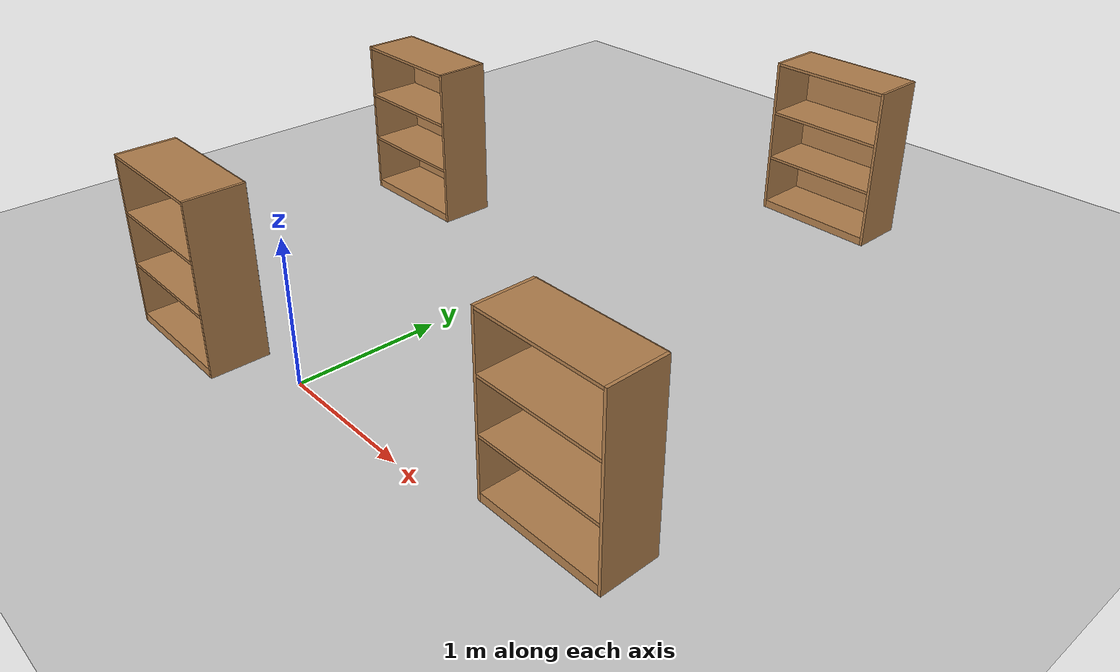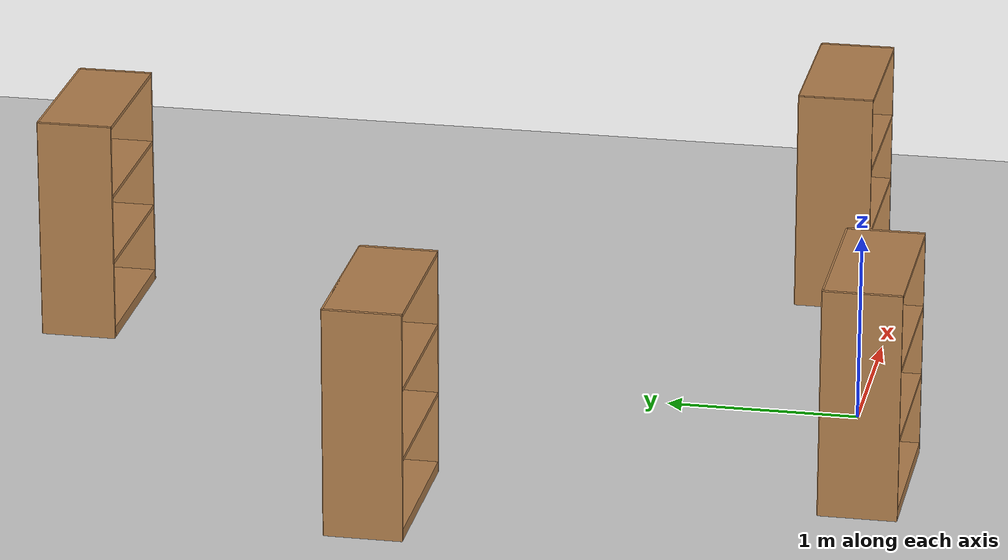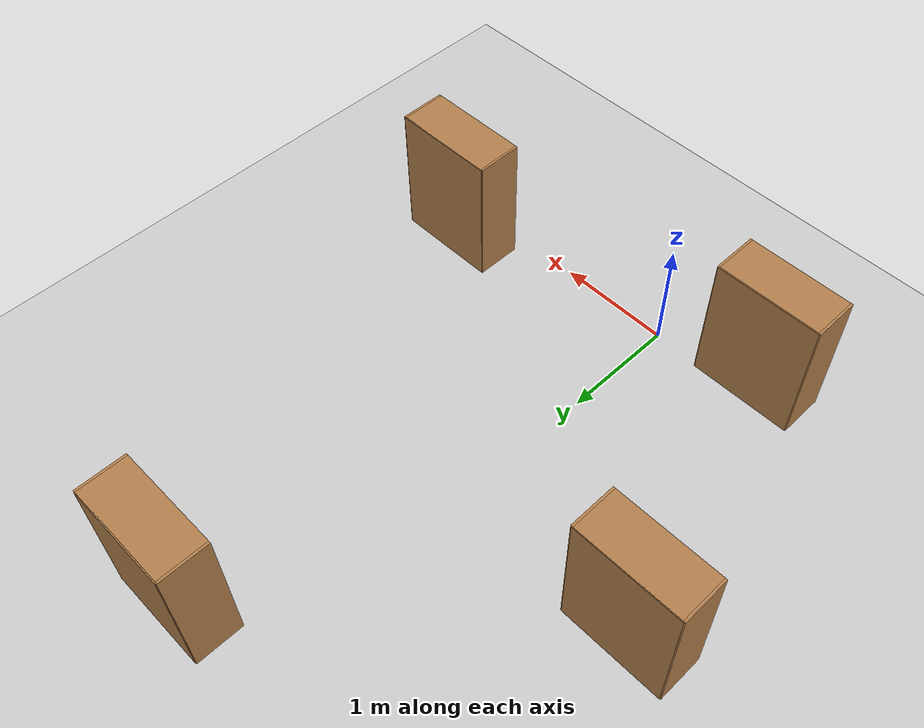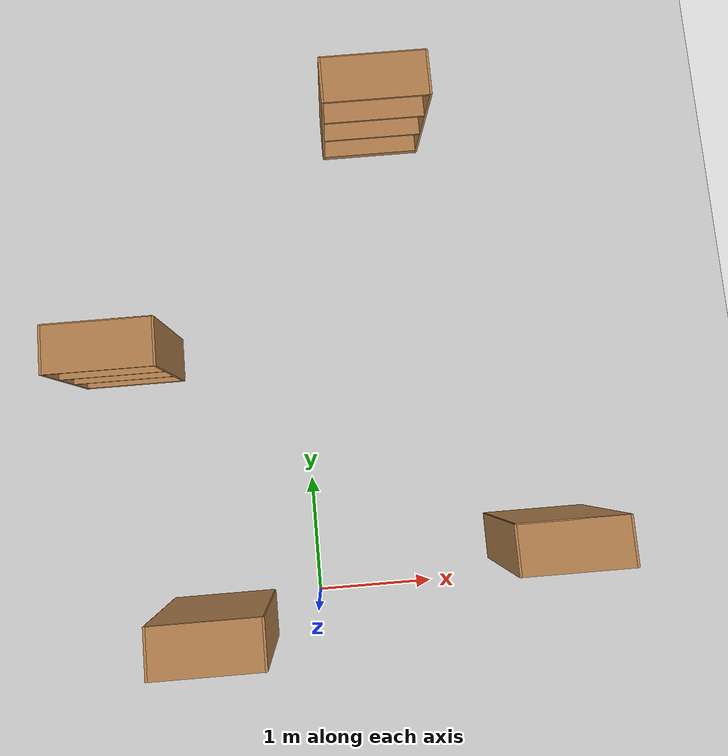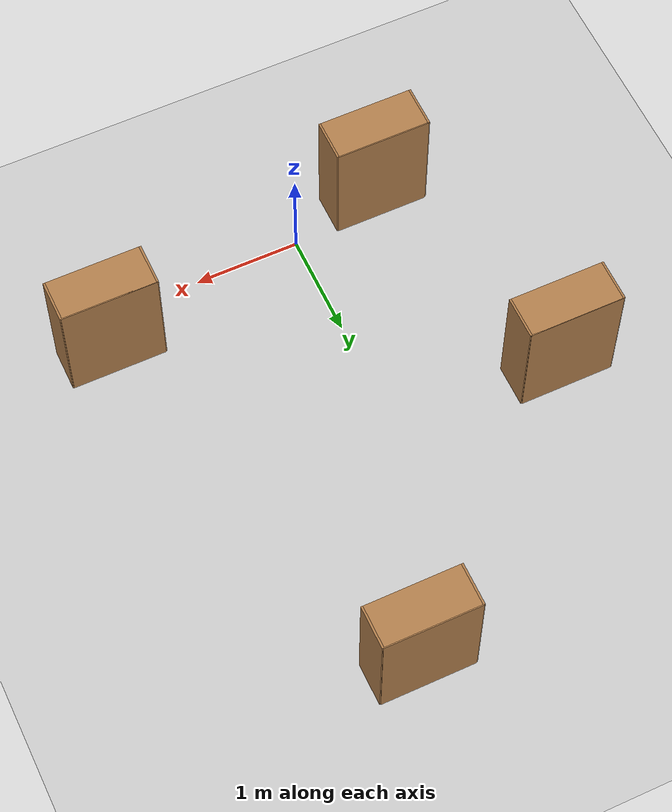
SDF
<sdf version="1.7">
 <world name="default">
  <model name="ground_plane">
   <static>1</static>
   <link name="link">
    <collision name="collision">
     <geometry><plane><normal>0 0 1</normal><size>100 100</size></plane></geometry>
     <surface>
      <contact><collide_bitmask>65535</collide_bitmask></contact>
      <friction><ode><mu>100</mu><mu2>50</mu2></ode></friction>
     </surface>
    </collision>
    <visual name="visual">
     <cast_shadows>0</cast_shadows>
     <geometry><plane><normal>0 0 1</normal><size>100 100</size></plane></geometry>
     <material>
      <script><uri>file://media/materials/scripts/gazebo.material</uri><name>Gazebo/Grey</name></script>
     </material>
    </visual>
    <enable_wind>1</enable_wind>
   </link>
   <enable_wind>1</enable_wind>
  </model>
  <model name="ground_plane_1">
   <static>1</static>
   <link name="link">
    <collision name="collision">
     <geometry><plane><normal>0 0 1</normal><size>100 100</size></plane></geometry>
     <surface>
      <contact><collide_bitmask>65535</collide_bitmask></contact>
      <friction><ode><mu>100</mu><mu2>50</mu2></ode></friction>
     </surface>
    </collision>
    <visual name="visual">
     <cast_shadows>0</cast_shadows>
     <geometry><plane><normal>0 0 1</normal><size>100 100</size></plane></geometry>
     <material>
      <script><uri>file://media/materials/scripts/gazebo.material</uri><name>Gazebo/Grey</name></script>
     </material>
    </visual>
   </link>
   <pose>-521.669 163.003 0 0 -0 0</pose>
  </model>
  <model name="bookshelf">
   <static>1</static>
   <link name="link">
    <inertial><mass>1</mass></inertial>
    <collision name="back">
     <pose>0 0.005 0.6 0 -0 0</pose>
     <geometry><box><size>0.9 0.01 1.2</size></box></geometry>
    </collision>
    <visual name="visual1">
     <pose>0 0.005 0.6 0 -0 0</pose>
     <geometry><box><size>0.9 0.01 1.2</size></box></geometry>
     <material>
      <script><uri>file://media/materials/scripts/gazebo.material</uri><name>Gazebo/Wood</name></script>
     </material>
    </visual>
    <collision name="left_side">
     <pose>0.45 -0.195 0.6 0 -0 0</pose>
     <geometry><box><size>0.02 0.4 1.2</size></box></geometry>
    </collision>
    <visual name="visual2">
     <pose>0.45 -0.195 0.6 0 -0 0</pose>
     <geometry><box><size>0.02 0.4 1.2</size></box></geometry>
     <material>
      <script><uri>file://media/materials/scripts/gazebo.material</uri><name>Gazebo/Wood</name></script>
     </material>
    </visual>
    <collision name="right_side">
     <pose>-0.45 -0.195 0.6 0 -0 0</pose>
     <geometry><box><size>0.02 0.4 1.2</size></box></geometry>
    </collision>
    <visual name="visual3">
     <pose>-0.45 -0.195 0.6 0 -0 0</pose>
     <geometry><box><size>0.02 0.4 1.2</size></box></geometry>
     <material>
      <script><uri>file://media/materials/scripts/gazebo.material</uri><name>Gazebo/Wood</name></script>
     </material>
    </visual>
    <collision name="bottom">
     <pose>0 -0.195 0.03 0 -0 0</pose>
     <geometry><box><size>0.88 0.4 0.06</size></box></geometry>
    </collision>
    <visual name="visual4">
     <pose>0 -0.195 0.03 0 -0 0</pose>
     <geometry><box><size>0.88 0.4 0.06</size></box></geometry>
     <material>
      <script><uri>file://media/materials/scripts/gazebo.material</uri><name>Gazebo/Wood</name></script>
     </material>
    </visual>
    <collision name="top">
     <pose>0 -0.195 1.19 0 -0 0</pose>
     <geometry><box><size>0.88 0.4 0.02</size></box></geometry>
    </collision>
    <visual name="visual5">
     <pose>0 -0.195 1.19 0 -0 0</pose>
     <geometry><box><size>0.88 0.4 0.02</size></box></geometry>
     <material>
      <script><uri>file://media/materials/scripts/gazebo.material</uri><name>Gazebo/Wood</name></script>
     </material>
    </visual>
    <collision name="low_shelf">
     <pose>0 -0.195 0.43 0 -0 0</pose>
     <geometry><box><size>0.88 0.4 0.02</size></box></geometry>
    </collision>
    <visual name="visual6">
     <pose>0 -0.195 0.43 0 -0 0</pose>
     <geometry><box><size>0.88 0.4 0.02</size></box></geometry>
     <material>
      <script><uri>file://media/materials/scripts/gazebo.material</uri><name>Gazebo/Wood</name></script>
     </material>
    </visual>
    <collision name="high_shelf">
     <pose>0 -0.195 0.8 0 -0 0</pose>
     <geometry><box><size>0.88 0.4 0.02</size></box></geometry>
    </collision>
    <visual name="visual7">
     <pose>0 -0.195 0.8 0 -0 0</pose>
     <geometry><box><size>0.88 0.4 0.02</size></box></geometry>
     <material>
      <script><uri>file://media/materials/scripts/gazebo.material</uri><name>Gazebo/Wood</name></script>
     </material>
    </visual>
   </link>
   <pose>0.806673 4.4542 0 0 -0 0</pose>
  </model>
  <model name="bookshelf_0">
   <static>1</static>
   <link name="link">
    <inertial><mass>1</mass></inertial>
    <collision name="back">
     <pose>0 0.005 0.6 0 -0 0</pose>
     <geometry><box><size>0.9 0.01 1.2</size></box></geometry>
    </collision>
    <visual name="visual1">
     <pose>0 0.005 0.6 0 -0 0</pose>
     <geometry><box><size>0.9 0.01 1.2</size></box></geometry>
     <material>
      <script><uri>file://media/materials/scripts/gazebo.material</uri><name>Gazebo/Wood</name></script>
     </material>
    </visual>
    <collision name="left_side">
     <pose>0.45 -0.195 0.6 0 -0 0</pose>
     <geometry><box><size>0.02 0.4 1.2</size></box></geometry>
    </collision>
    <visual name="visual2">
     <pose>0.45 -0.195 0.6 0 -0 0</pose>
     <geometry><box><size>0.02 0.4 1.2</size></box></geometry>
     <material>
      <script><uri>file://media/materials/scripts/gazebo.material</uri><name>Gazebo/Wood</name></script>
     </material>
    </visual>
    <collision name="right_side">
     <pose>-0.45 -0.195 0.6 0 -0 0</pose>
     <geometry><box><size>0.02 0.4 1.2</size></box></geometry>
    </collision>
    <visual name="visual3">
     <pose>-0.45 -0.195 0.6 0 -0 0</pose>
     <geometry><box><size>0.02 0.4 1.2</size></box></geometry>
     <material>
      <script><uri>file://media/materials/scripts/gazebo.material</uri><name>Gazebo/Wood</name></script>
     </material>
    </visual>
    <collision name="bottom">
     <pose>0 -0.195 0.03 0 -0 0</pose>
     <geometry><box><size>0.88 0.4 0.06</size></box></geometry>
    </collision>
    <visual name="visual4">
     <pose>0 -0.195 0.03 0 -0 0</pose>
     <geometry><box><size>0.88 0.4 0.06</size></box></geometry>
     <material>
      <script><uri>file://media/materials/scripts/gazebo.material</uri><name>Gazebo/Wood</name></script>
     </material>
    </visual>
    <collision name="top">
     <pose>0 -0.195 1.19 0 -0 0</pose>
     <geometry><box><size>0.88 0.4 0.02</size></box></geometry>
    </collision>
    <visual name="visual5">
     <pose>0 -0.195 1.19 0 -0 0</pose>
     <geometry><box><size>0.88 0.4 0.02</size></box></geometry>
     <material>
      <script><uri>file://media/materials/scripts/gazebo.material</uri><name>Gazebo/Wood</name></script>
     </material>
    </visual>
    <collision name="low_shelf">
     <pose>0 -0.195 0.43 0 -0 0</pose>
     <geometry><box><size>0.88 0.4 0.02</size></box></geometry>
    </collision>
    <visual name="visual6">
     <pose>0 -0.195 0.43 0 -0 0</pose>
     <geometry><box><size>0.88 0.4 0.02</size></box></geometry>
     <material>
      <script><uri>file://media/materials/scripts/gazebo.material</uri><name>Gazebo/Wood</name></script>
     </material>
    </visual>
    <collision name="high_shelf">
     <pose>0 -0.195 0.8 0 -0 0</pose>
     <geometry><box><size>0.88 0.4 0.02</size></box></geometry>
    </collision>
    <visual name="visual7">
     <pose>0 -0.195 0.8 0 -0 0</pose>
     <geometry><box><size>0.88 0.4 0.02</size></box></geometry>
     <material>
      <script><uri>file://media/materials/scripts/gazebo.material</uri><name>Gazebo/Wood</name></script>
     </material>
    </visual>
   </link>
   <pose>-1.58208 2.38888 0 0 -0 0</pose>
  </model>
  <model name="bookshelf_0_clone">
   <static>1</static>
   <link name="link">
    <inertial><mass>1</mass></inertial>
    <collision name="back">
     <pose>0 0.005 0.6 0 -0 0</pose>
     <geometry><box><size>0.9 0.01 1.2</size></box></geometry>
    </collision>
    <visual name="visual1">
     <pose>0 0.005 0.6 0 -0 0</pose>
     <geometry><box><size>0.9 0.01 1.2</size></box></geometry>
     <material>
      <script><uri>file://media/materials/scripts/gazebo.material</uri><name>Gazebo/Wood</name></script>
     </material>
    </visual>
    <collision name="left_side">
     <pose>0.45 -0.195 0.6 0 -0 0</pose>
     <geometry><box><size>0.02 0.4 1.2</size></box></geometry>
    </collision>
    <visual name="visual2">
     <pose>0.45 -0.195 0.6 0 -0 0</pose>
     <geometry><box><size>0.02 0.4 1.2</size></box></geometry>
     <material>
      <script><uri>file://media/materials/scripts/gazebo.material</uri><name>Gazebo/Wood</name></script>
     </material>
    </visual>
    <collision name="right_side">
     <pose>-0.45 -0.195 0.6 0 -0 0</pose>
     <geometry><box><size>0.02 0.4 1.2</size></box></geometry>
    </collision>
    <visual name="visual3">
     <pose>-0.45 -0.195 0.6 0 -0 0</pose>
     <geometry><box><size>0.02 0.4 1.2</size></box></geometry>
     <material>
      <script><uri>file://media/materials/scripts/gazebo.material</uri><name>Gazebo/Wood</name></script>
     </material>
    </visual>
    <collision name="bottom">
     <pose>0 -0.195 0.03 0 -0 0</pose>
     <geometry><box><size>0.88 0.4 0.06</size></box></geometry>
    </collision>
    <visual name="visual4">
     <pose>0 -0.195 0.03 0 -0 0</pose>
     <geometry><box><size>0.88 0.4 0.06</size></box></geometry>
     <material>
      <script><uri>file://media/materials/scripts/gazebo.material</uri><name>Gazebo/Wood</name></script>
     </material>
    </visual>
    <collision name="top">
     <pose>0 -0.195 1.19 0 -0 0</pose>
     <geometry><box><size>0.88 0.4 0.02</size></box></geometry>
    </collision>
    <visual name="visual5">
     <pose>0 -0.195 1.19 0 -0 0</pose>
     <geometry><box><size>0.88 0.4 0.02</size></box></geometry>
     <material>
      <script><uri>file://media/materials/scripts/gazebo.material</uri><name>Gazebo/Wood</name></script>
     </material>
    </visual>
    <collision name="low_shelf">
     <pose>0 -0.195 0.43 0 -0 0</pose>
     <geometry><box><size>0.88 0.4 0.02</size></box></geometry>
    </collision>
    <visual name="visual6">
     <pose>0 -0.195 0.43 0 -0 0</pose>
     <geometry><box><size>0.88 0.4 0.02</size></box></geometry>
     <material>
      <script><uri>file://media/materials/scripts/gazebo.material</uri><name>Gazebo/Wood</name></script>
     </material>
    </visual>
    <collision name="high_shelf">
     <pose>0 -0.195 0.8 0 -0 0</pose>
     <geometry><box><size>0.88 0.4 0.02</size></box></geometry>
    </collision>
    <visual name="visual7">
     <pose>0 -0.195 0.8 0 -0 0</pose>
     <geometry><box><size>0.88 0.4 0.02</size></box></geometry>
     <material>
      <script><uri>file://media/materials/scripts/gazebo.material</uri><name>Gazebo/Wood</name></script>
     </material>
    </visual>
   </link>
   <pose>-0.867405 0.021305 0 0 -0 0</pose>
  </model>
  <model name="bookshelf_0_clone_0">
   <static>1</static>
   <link name="link">
    <inertial><mass>1</mass></inertial>
    <collision name="back">
     <pose>0 0.005 0.6 0 -0 0</pose>
     <geometry><box><size>0.9 0.01 1.2</size></box></geometry>
    </collision>
    <visual name="visual1">
     <pose>0 0.005 0.6 0 -0 0</pose>
     <geometry><box><size>0.9 0.01 1.2</size></box></geometry>
     <material>
      <script><uri>file://media/materials/scripts/gazebo.material</uri><name>Gazebo/Wood</name></script>
     </material>
    </visual>
    <collision name="left_side">
     <pose>0.45 -0.195 0.6 0 -0 0</pose>
     <geometry><box><size>0.02 0.4 1.2</size></box></geometry>
    </collision>
    <visual name="visual2">
     <pose>0.45 -0.195 0.6 0 -0 0</pose>
     <geometry><box><size>0.02 0.4 1.2</size></box></geometry>
     <material>
      <script><uri>file://media/materials/scripts/gazebo.material</uri><name>Gazebo/Wood</name></script>
     </material>
    </visual>
    <collision name="right_side">
     <pose>-0.45 -0.195 0.6 0 -0 0</pose>
     <geometry><box><size>0.02 0.4 1.2</size></box></geometry>
    </collision>
    <visual name="visual3">
     <pose>-0.45 -0.195 0.6 0 -0 0</pose>
     <geometry><box><size>0.02 0.4 1.2</size></box></geometry>
     <material>
      <script><uri>file://media/materials/scripts/gazebo.material</uri><name>Gazebo/Wood</name></script>
     </material>
    </visual>
    <collision name="bottom">
     <pose>0 -0.195 0.03 0 -0 0</pose>
     <geometry><box><size>0.88 0.4 0.06</size></box></geometry>
    </collision>
    <visual name="visual4">
     <pose>0 -0.195 0.03 0 -0 0</pose>
     <geometry><box><size>0.88 0.4 0.06</size></box></geometry>
     <material>
      <script><uri>file://media/materials/scripts/gazebo.material</uri><name>Gazebo/Wood</name></script>
     </material>
    </visual>
    <collision name="top">
     <pose>0 -0.195 1.19 0 -0 0</pose>
     <geometry><box><size>0.88 0.4 0.02</size></box></geometry>
    </collision>
    <visual name="visual5">
     <pose>0 -0.195 1.19 0 -0 0</pose>
     <geometry><box><size>0.88 0.4 0.02</size></box></geometry>
     <material>
      <script><uri>file://media/materials/scripts/gazebo.material</uri><name>Gazebo/Wood</name></script>
     </material>
    </visual>
    <collision name="low_shelf">
     <pose>0 -0.195 0.43 0 -0 0</pose>
     <geometry><box><size>0.88 0.4 0.02</size></box></geometry>
    </collision>
    <visual name="visual6">
     <pose>0 -0.195 0.43 0 -0 0</pose>
     <geometry><box><size>0.88 0.4 0.02</size></box></geometry>
     <material>
      <script><uri>file://media/materials/scripts/gazebo.material</uri><name>Gazebo/Wood</name></script>
     </material>
    </visual>
    <collision name="high_shelf">
     <pose>0 -0.195 0.8 0 -0 0</pose>
     <geometry><box><size>0.88 0.4 0.02</size></box></geometry>
    </collision>
    <visual name="visual7">
     <pose>0 -0.195 0.8 0 -0 0</pose>
     <geometry><box><size>0.88 0.4 0.02</size></box></geometry>
     <material>
      <script><uri>file://media/materials/scripts/gazebo.material</uri><name>Gazebo/Wood</name></script>
     </material>
    </visual>
   </link>
   <pose>2 0.544931 0 0 -0 0</pose>
  </model>
 </world>
</sdf>
